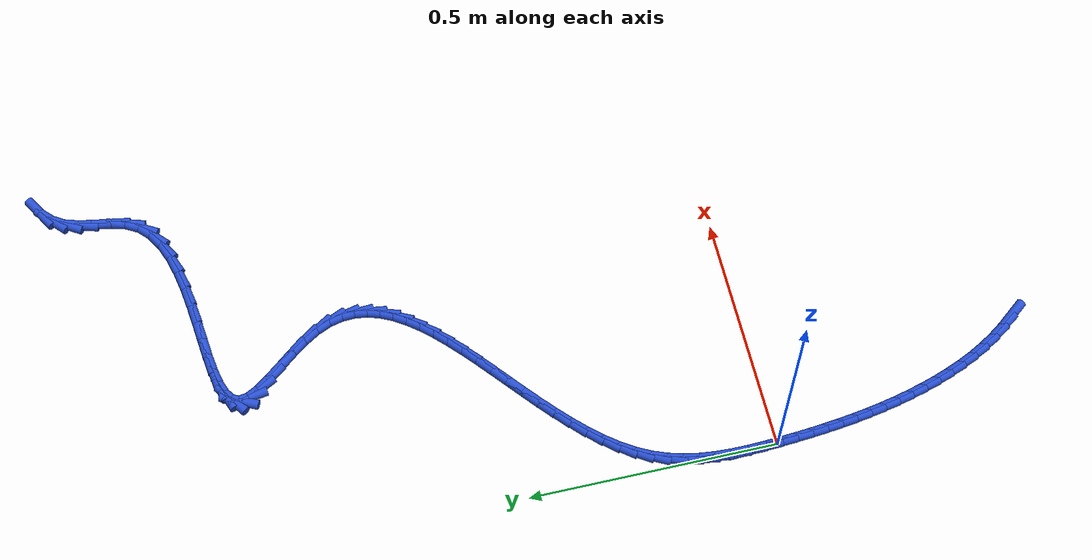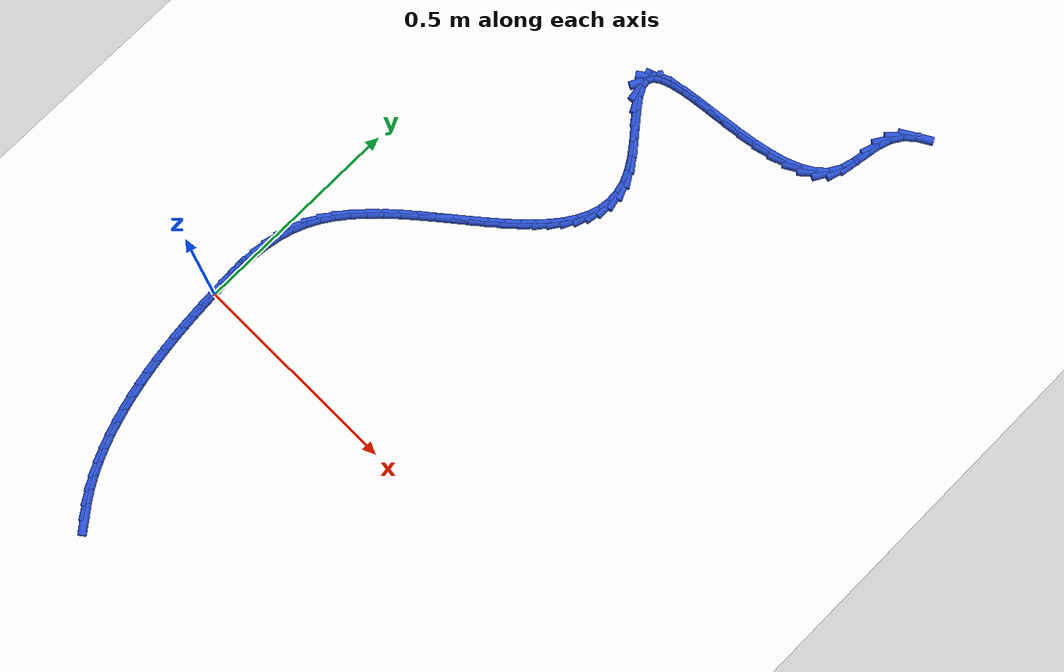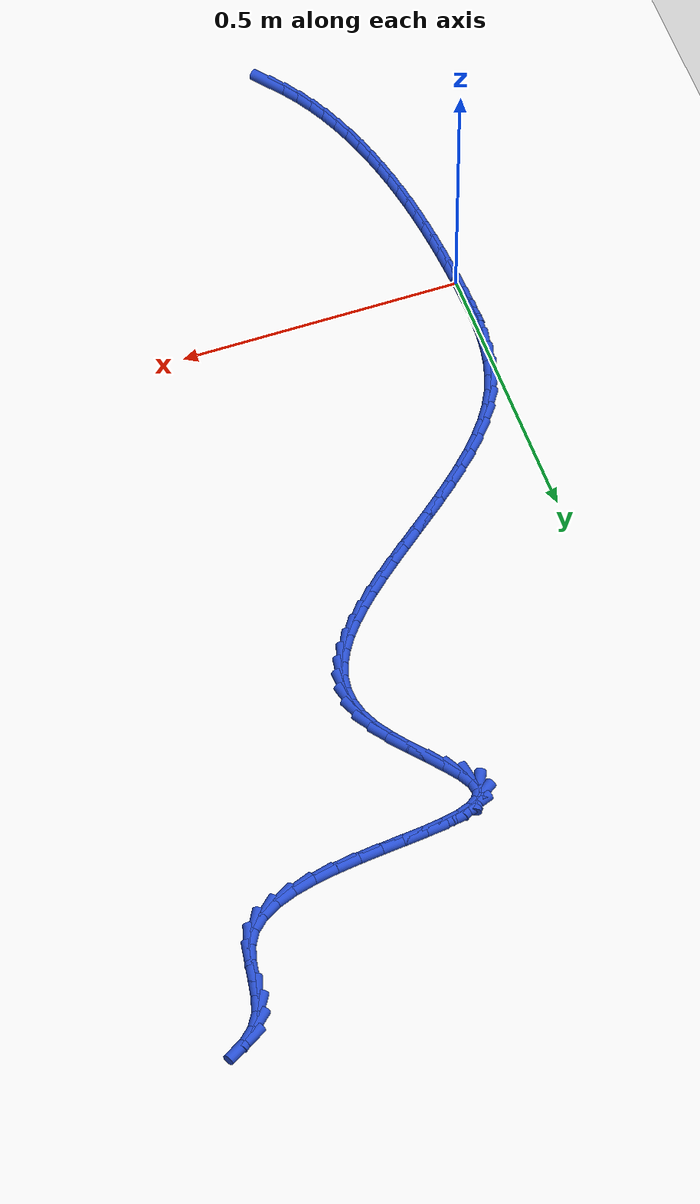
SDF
<sdf version="1.6">
 <world name="default">
  <model name="ground_plane">
   <static>1</static>
   <link name="link">
    <collision name="collision">
     <geometry><plane><normal>0 0 1</normal><size>100 100</size></plane></geometry>
     <surface><friction><ode><mu>100</mu><mu2>50</mu2></ode></friction></surface>
    </collision>
    <visual name="visual">
     <cast_shadows>0</cast_shadows>
     <geometry><plane><normal>0 0 1</normal><size>100 100</size></plane></geometry>
     <material>
      <script><uri>file://media/materials/scripts/gazebo.material</uri><name>Gazebo/WhiteGlow</name></script>
     </material>
    </visual>
   </link>
  </model>
  <model name="line">
   <link name="link_0">
    <pose>1.734723475976807e-18 -4.85722573273506e-17 0.01 0 1.57 -1.5189134260214208</pose>
    <collision name="collision">
     <geometry><cylinder><radius>0.01</radius><length>0.08</length></cylinder></geometry>
    </collision>
    <visual name="visual">
     <material>
      <script><name>Gazebo/Blue</name><uri>file://media/materials/scripts/gazebo.material</uri></script>
     </material>
     <geometry><cylinder><radius>0.01</radius><length>0.08</length></cylinder></geometry>
    </visual>
   </link>
   <link name="link_1">
    <pose>-0.0016460797843267311 0.03169835346029947 0.01 0 1.57 -1.5418262945650378</pose>
    <collision name="collision">
     <geometry><cylinder><radius>0.01</radius><length>0.08</length></cylinder></geometry>
    </collision>
    <visual name="visual">
     <material>
      <script><name>Gazebo/Blue</name><uri>file://media/materials/scripts/gazebo.material</uri></script>
     </material>
     <geometry><cylinder><radius>0.01</radius><length>0.08</length></cylinder></geometry>
    </visual>
   </link>
   <link name="link_2">
    <pose>-0.0025672938509750513 0.0634883194280632 0.01 0 1.57 1.5645765763036645</pose>
    <collision name="collision">
     <geometry><cylinder><radius>0.01</radius><length>0.08</length></cylinder></geometry>
    </collision>
    <visual name="visual">
     <material>
      <script><name>Gazebo/Blue</name><uri>file://media/materials/scripts/gazebo.material</uri></script>
     </material>
     <geometry><cylinder><radius>0.01</radius><length>0.08</length></cylinder></geometry>
    </visual>
   </link>
   <link name="link_3">
    <pose>-0.002369825666599471 0.09523648011001434 0.01 0 1.57 1.5166899265524179</pose>
    <collision name="collision">
     <geometry><cylinder><radius>0.01</radius><length>0.08</length></cylinder></geometry>
    </collision>
    <visual name="visual">
     <material>
      <script><name>Gazebo/Blue</name><uri>file://media/materials/scripts/gazebo.material</uri></script>
     </material>
     <geometry><cylinder><radius>0.01</radius><length>0.08</length></cylinder></geometry>
    </visual>
   </link>
   <link name="link_4">
    <pose>-0.0006598586978545061 0.12680941771287624 0.01 0 1.57 1.4556399550820853</pose>
    <collision name="collision">
     <geometry><cylinder><radius>0.01</radius><length>0.08</length></cylinder></geometry>
    </collision>
    <visual name="visual">
     <material>
      <script><name>Gazebo/Blue</name><uri>file://media/materials/scripts/gazebo.material</uri></script>
     </material>
     <geometry><cylinder><radius>0.01</radius><length>0.08</length></cylinder></geometry>
    </visual>
   </link>
   <link name="link_5">
    <pose>0.0029564235886053326 0.158073714443372 0.01 0 1.57 1.381150320873523</pose>
    <collision name="collision">
     <geometry><cylinder><radius>0.01</radius><length>0.08</length></cylinder></geometry>
    </collision>
    <visual name="visual">
     <material>
      <script><name>Gazebo/Blue</name><uri>file://media/materials/scripts/gazebo.material</uri></script>
     </material>
     <geometry><cylinder><radius>0.01</radius><length>0.08</length></cylinder></geometry>
    </visual>
   </link>
   <link name="link_6">
    <pose>0.00887283772612553 0.18889595250822502 0.01 0 1.57 1.293461888868063</pose>
    <collision name="collision">
     <geometry><cylinder><radius>0.01</radius><length>0.08</length></cylinder></geometry>
    </collision>
    <visual name="visual">
     <material>
      <script><name>Gazebo/Blue</name><uri>file://media/materials/scripts/gazebo.material</uri></script>
     </material>
     <geometry><cylinder><radius>0.01</radius><length>0.08</length></cylinder></geometry>
    </visual>
   </link>
   <link name="link_7">
    <pose>0.017483200248051577 0.21914271411415848 0.01 0 1.57 1.1937098474214811</pose>
    <collision name="collision">
     <geometry><cylinder><radius>0.01</radius><length>0.08</length></cylinder></geometry>
    </collision>
    <visual name="visual">
     <material>
      <script><name>Gazebo/Blue</name><uri>file://media/materials/scripts/gazebo.material</uri></script>
     </material>
     <geometry><cylinder><radius>0.01</radius><length>0.08</length></cylinder></geometry>
    </visual>
   </link>
   <link name="link_8">
    <pose>0.02918132768772895 0.24868058146789565 0.01 0 1.57 1.0854017996350127</pose>
    <collision name="collision">
     <geometry><cylinder><radius>0.01</radius><length>0.08</length></cylinder></geometry>
    </collision>
    <visual name="visual">
     <material>
      <script><name>Gazebo/Blue</name><uri>file://media/materials/scripts/gazebo.material</uri></script>
     </material>
     <geometry><cylinder><radius>0.01</radius><length>0.08</length></cylinder></geometry>
    </visual>
   </link>
   <link name="link_9">
    <pose>0.04432294769058389 0.277385789509328 0.01 0 1.57 0.9854817044311218</pose>
    <collision name="collision">
     <geometry><cylinder><radius>0.01</radius><length>0.08</length></cylinder></geometry>
    </collision>
    <visual name="visual">
     <material>
      <script><name>Gazebo/Blue</name><uri>file://media/materials/scripts/gazebo.material</uri></script>
     </material>
     <geometry><cylinder><radius>0.01</radius><length>0.08</length></cylinder></geometry>
    </visual>
   </link>
   <link name="link_10">
    <pose>0.06279357228858395 0.3052537382707447 0.01 0 1.57 0.9032248624812153</pose>
    <collision name="collision">
     <geometry><cylinder><radius>0.01</radius><length>0.08</length></cylinder></geometry>
    </collision>
    <visual name="visual">
     <material>
      <script><name>Gazebo/Blue</name><uri>file://media/materials/scripts/gazebo.material</uri></script>
     </material>
     <geometry><cylinder><radius>0.01</radius><length>0.08</length></cylinder></geometry>
    </visual>
   </link>
   <link name="link_11">
    <pose>0.08416179328791729 0.33236014376482087 0.01 0 1.57 0.8369656892477249</pose>
    <collision name="collision">
     <geometry><cylinder><radius>0.01</radius><length>0.08</length></cylinder></geometry>
    </collision>
    <visual name="visual">
     <material>
      <script><name>Gazebo/Blue</name><uri>file://media/materials/scripts/gazebo.material</uri></script>
     </material>
     <geometry><cylinder><radius>0.01</radius><length>0.08</length></cylinder></geometry>
    </visual>
   </link>
   <link name="link_12">
    <pose>0.10799027667927266 0.35878222376285346 0.01 0 1.57 0.7846928789961841</pose>
    <collision name="collision">
     <geometry><cylinder><radius>0.01</radius><length>0.08</length></cylinder></geometry>
    </collision>
    <visual name="visual">
     <material>
      <script><name>Gazebo/Blue</name><uri>file://media/materials/scripts/gazebo.material</uri></script>
     </material>
     <geometry><cylinder><radius>0.01</radius><length>0.08</length></cylinder></geometry>
    </visual>
   </link>
   <link name="link_13">
    <pose>0.13384168845333874 0.38459719603613923 0.01 0 1.57 0.7446044455101657</pose>
    <collision name="collision">
     <geometry><cylinder><radius>0.01</radius><length>0.08</length></cylinder></geometry>
    </collision>
    <visual name="visual">
     <material>
      <script><name>Gazebo/Blue</name><uri>file://media/materials/scripts/gazebo.material</uri></script>
     </material>
     <geometry><cylinder><radius>0.01</radius><length>0.08</length></cylinder></geometry>
    </visual>
   </link>
   <link name="link_14">
    <pose>0.16127869460080424 0.40988227835597485 0.01 0 1.57 0.7152584562376902</pose>
    <collision name="collision">
     <geometry><cylinder><radius>0.01</radius><length>0.08</length></cylinder></geometry>
    </collision>
    <visual name="visual">
     <material>
      <script><name>Gazebo/Blue</name><uri>file://media/materials/scripts/gazebo.material</uri></script>
     </material>
     <geometry><cylinder><radius>0.01</radius><length>0.08</length></cylinder></geometry>
    </visual>
   </link>
   <link name="link_15">
    <pose>0.1898639611123579 0.43471468849365724 0.01 0 1.57 0.6956131613511655</pose>
    <collision name="collision">
     <geometry><cylinder><radius>0.01</radius><length>0.08</length></cylinder></geometry>
    </collision>
    <visual name="visual">
     <material>
      <script><name>Gazebo/Blue</name><uri>file://media/materials/scripts/gazebo.material</uri></script>
     </material>
     <geometry><cylinder><radius>0.01</radius><length>0.08</length></cylinder></geometry>
    </visual>
   </link>
   <link name="link_16">
    <pose>0.2191601539786885 0.45917164422048323 0.01 0 1.57 0.6850253288112776</pose>
    <collision name="collision">
     <geometry><cylinder><radius>0.01</radius><length>0.08</length></cylinder></geometry>
    </collision>
    <visual name="visual">
     <material>
      <script><name>Gazebo/Blue</name><uri>file://media/materials/scripts/gazebo.material</uri></script>
     </material>
     <geometry><cylinder><radius>0.01</radius><length>0.08</length></cylinder></geometry>
    </visual>
   </link>
   <link name="link_17">
    <pose>0.24872993919048458 0.4833303633077494 0.01 0 1.57 0.6832435721577305</pose>
    <collision name="collision">
     <geometry><cylinder><radius>0.01</radius><length>0.08</length></cylinder></geometry>
    </collision>
    <visual name="visual">
     <material>
      <script><name>Gazebo/Blue</name><uri>file://media/materials/scripts/gazebo.material</uri></script>
     </material>
     <geometry><cylinder><radius>0.01</radius><length>0.08</length></cylinder></geometry>
    </visual>
   </link>
   <link name="link_18">
    <pose>0.27813598273843515 0.5072680635267528 0.01 0 1.57 0.6904153159585457</pose>
    <collision name="collision">
     <geometry><cylinder><radius>0.01</radius><length>0.08</length></cylinder></geometry>
    </collision>
    <visual name="visual">
     <material>
      <script><name>Gazebo/Blue</name><uri>file://media/materials/scripts/gazebo.material</uri></script>
     </material>
     <geometry><cylinder><radius>0.01</radius><length>0.08</length></cylinder></geometry>
    </visual>
   </link>
   <link name="link_19">
    <pose>0.3069409506132286 0.53106196264879 0.01 0 1.57 0.7071172337519179</pose>
    <collision name="collision">
     <geometry><cylinder><radius>0.01</radius><length>0.08</length></cylinder></geometry>
    </collision>
    <visual name="visual">
     <material>
      <script><name>Gazebo/Blue</name><uri>file://media/materials/scripts/gazebo.material</uri></script>
     </material>
     <geometry><cylinder><radius>0.01</radius><length>0.08</length></cylinder></geometry>
    </visual>
   </link>
   <link name="link_20">
    <pose>0.33470750880555394 0.554789278445158 0.01 0 1.57 0.7344144549488046</pose>
    <collision name="collision">
     <geometry><cylinder><radius>0.01</radius><length>0.08</length></cylinder></geometry>
    </collision>
    <visual name="visual">
     <material>
      <script><name>Gazebo/Blue</name><uri>file://media/materials/scripts/gazebo.material</uri></script>
     </material>
     <geometry><cylinder><radius>0.01</radius><length>0.08</length></cylinder></geometry>
    </visual>
   </link>
   <link name="link_21">
    <pose>0.3609983233060997 0.5785272286871536 0.01 0 1.57 0.7739485845781411</pose>
    <collision name="collision">
     <geometry><cylinder><radius>0.01</radius><length>0.08</length></cylinder></geometry>
    </collision>
    <visual name="visual">
     <material>
      <script><name>Gazebo/Blue</name><uri>file://media/materials/scripts/gazebo.material</uri></script>
     </material>
     <geometry><cylinder><radius>0.01</radius><length>0.08</length></cylinder></geometry>
    </visual>
   </link>
   <link name="link_22">
    <pose>0.38537606010555475 0.6023530311460733 0.01 0 1.57 0.8280412291195116</pose>
    <collision name="collision">
     <geometry><cylinder><radius>0.01</radius><length>0.08</length></cylinder></geometry>
    </collision>
    <visual name="visual">
     <material>
      <script><name>Gazebo/Blue</name><uri>file://media/materials/scripts/gazebo.material</uri></script>
     </material>
     <geometry><cylinder><radius>0.01</radius><length>0.08</length></cylinder></geometry>
    </visual>
   </link>
   <link name="link_23">
    <pose>0.40740338519460767 0.6263439035932142 0.01 0 1.57 0.8997638710351674</pose>
    <collision name="collision">
     <geometry><cylinder><radius>0.01</radius><length>0.08</length></cylinder></geometry>
    </collision>
    <visual name="visual">
     <material>
      <script><name>Gazebo/Blue</name><uri>file://media/materials/scripts/gazebo.material</uri></script>
     </material>
     <geometry><cylinder><radius>0.01</radius><length>0.08</length></cylinder></geometry>
    </visual>
   </link>
   <link name="link_24">
    <pose>0.42664296456394735 0.650577063799873 0.01 0 1.57 0.9928403407481277</pose>
    <collision name="collision">
     <geometry><cylinder><radius>0.01</radius><length>0.08</length></cylinder></geometry>
    </collision>
    <visual name="visual">
     <material>
      <script><name>Gazebo/Blue</name><uri>file://media/materials/scripts/gazebo.material</uri></script>
     </material>
     <geometry><cylinder><radius>0.01</radius><length>0.08</length></cylinder></geometry>
    </visual>
   </link>
   <link name="link_25">
    <pose>0.44265746420426233 0.6751297295373464 0.01 0 1.57 1.1110878754475098</pose>
    <collision name="collision">
     <geometry><cylinder><radius>0.01</radius><length>0.08</length></cylinder></geometry>
    </collision>
    <visual name="visual">
     <material>
      <script><name>Gazebo/Blue</name><uri>file://media/materials/scripts/gazebo.material</uri></script>
     </material>
     <geometry><cylinder><radius>0.01</radius><length>0.08</length></cylinder></geometry>
    </visual>
   </link>
   <link name="link_26">
    <pose>0.45500955010624133 0.7000791185769313 0.01 0 1.57 1.2569289182996217</pose>
    <collision name="collision">
     <geometry><cylinder><radius>0.01</radius><length>0.08</length></cylinder></geometry>
    </collision>
    <visual name="visual">
     <material>
      <script><name>Gazebo/Blue</name><uri>file://media/materials/scripts/gazebo.material</uri></script>
     </material>
     <geometry><cylinder><radius>0.01</radius><length>0.08</length></cylinder></geometry>
    </visual>
   </link>
   <link name="link_27">
    <pose>0.4632618882605733 0.7255024486899246 0.01 0 1.57 1.4287251512366161</pose>
    <collision name="collision">
     <geometry><cylinder><radius>0.01</radius><length>0.08</length></cylinder></geometry>
    </collision>
    <visual name="visual">
     <material>
      <script><name>Gazebo/Blue</name><uri>file://media/materials/scripts/gazebo.material</uri></script>
     </material>
     <geometry><cylinder><radius>0.01</radius><length>0.08</length></cylinder></geometry>
    </visual>
   </link>
   <link name="link_28">
    <pose>0.46697714465794665 0.7514769376476229 0.01 0 1.57 -1.5234999055666298</pose>
    <collision name="collision">
     <geometry><cylinder><radius>0.01</radius><length>0.08</length></cylinder></geometry>
    </collision>
    <visual name="visual">
     <material>
      <script><name>Gazebo/Blue</name><uri>file://media/materials/scripts/gazebo.material</uri></script>
     </material>
     <geometry><cylinder><radius>0.01</radius><length>0.08</length></cylinder></geometry>
    </visual>
   </link>
   <link name="link_29">
    <pose>0.46571798528905034 0.778079803221323 0.01 0 1.57 -1.3312084464958525</pose>
    <collision name="collision">
     <geometry><cylinder><radius>0.01</radius><length>0.08</length></cylinder></geometry>
    </collision>
    <visual name="visual">
     <material>
      <script><name>Gazebo/Blue</name><uri>file://media/materials/scripts/gazebo.material</uri></script>
     </material>
     <geometry><cylinder><radius>0.01</radius><length>0.08</length></cylinder></geometry>
    </visual>
   </link>
   <link name="link_30">
    <pose>0.4590470761445731 0.8053882631823218 0.01 0 1.57 -1.1515338383840577</pose>
    <collision name="collision">
     <geometry><cylinder><radius>0.01</radius><length>0.08</length></cylinder></geometry>
    </collision>
    <visual name="visual">
     <material>
      <script><name>Gazebo/Blue</name><uri>file://media/materials/scripts/gazebo.material</uri></script>
     </material>
     <geometry><cylinder><radius>0.01</radius><length>0.08</length></cylinder></geometry>
    </visual>
   </link>
   <link name="link_31">
    <pose>0.44652713254071225 0.8334795214001698 0.01 0 1.57 -1.0059503788455562</pose>
    <collision name="collision">
     <geometry><cylinder><radius>0.01</radius><length>0.08</length></cylinder></geometry>
    </collision>
    <visual name="visual">
     <material>
      <script><name>Gazebo/Blue</name><uri>file://media/materials/scripts/gazebo.material</uri></script>
     </material>
     <geometry><cylinder><radius>0.01</radius><length>0.08</length></cylinder></geometry>
    </visual>
   </link>
   <link name="link_32">
    <pose>0.42827997343888735 0.8622732057305147 0.01 0 1.57 -0.9216304899793426</pose>
    <collision name="collision">
     <geometry><cylinder><radius>0.01</radius><length>0.08</length></cylinder></geometry>
    </collision>
    <visual name="visual">
     <material>
      <script><name>Gazebo/Blue</name><uri>file://media/materials/scripts/gazebo.material</uri></script>
     </material>
     <geometry><cylinder><radius>0.01</radius><length>0.08</length></cylinder></geometry>
    </visual>
   </link>
   <link name="link_33">
    <pose>0.40637277105334624 0.8911406717831823 0.01 0 1.57 -0.8848567821568042</pose>
    <collision name="collision">
     <geometry><cylinder><radius>0.01</radius><length>0.08</length></cylinder></geometry>
    </collision>
    <visual name="visual">
     <material>
      <script><name>Gazebo/Blue</name><uri>file://media/materials/scripts/gazebo.material</uri></script>
     </material>
     <geometry><cylinder><radius>0.01</radius><length>0.08</length></cylinder></geometry>
    </visual>
   </link>
   <link name="link_34">
    <pose>0.38329552865643496 0.9193341057916969 0.01 0 1.57 -0.8883591014984118</pose>
    <collision name="collision">
     <geometry><cylinder><radius>0.01</radius><length>0.08</length></cylinder></geometry>
    </collision>
    <visual name="visual">
     <material>
      <script><name>Gazebo/Blue</name><uri>file://media/materials/scripts/gazebo.material</uri></script>
     </material>
     <geometry><cylinder><radius>0.01</radius><length>0.08</length></cylinder></geometry>
    </visual>
   </link>
   <link name="link_35">
    <pose>0.36153824952049896 0.946105693989582 0.01 0 1.57 -0.9405393700569313</pose>
    <collision name="collision">
     <geometry><cylinder><radius>0.01</radius><length>0.08</length></cylinder></geometry>
    </collision>
    <visual name="visual">
     <material>
      <script><name>Gazebo/Blue</name><uri>file://media/materials/scripts/gazebo.material</uri></script>
     </material>
     <geometry><cylinder><radius>0.01</radius><length>0.08</length></cylinder></geometry>
    </visual>
   </link>
   <link name="link_36">
    <pose>0.34359093691788434 0.9707076226103615 0.01 0 1.57 -1.0778888052492228</pose>
    <collision name="collision">
     <geometry><cylinder><radius>0.01</radius><length>0.08</length></cylinder></geometry>
    </collision>
    <visual name="visual">
     <material>
      <script><name>Gazebo/Blue</name><uri>file://media/materials/scripts/gazebo.material</uri></script>
     </material>
     <geometry><cylinder><radius>0.01</radius><length>0.08</length></cylinder></geometry>
    </visual>
   </link>
   <link name="link_37">
    <pose>0.33194359412093677 0.9923920778875597 0.01 0 1.57 -1.4119749061984015</pose>
    <collision name="collision">
     <geometry><cylinder><radius>0.01</radius><length>0.08</length></cylinder></geometry>
    </collision>
    <visual name="visual">
     <material>
      <script><name>Gazebo/Blue</name><uri>file://media/materials/scripts/gazebo.material</uri></script>
     </material>
     <geometry><cylinder><radius>0.01</radius><length>0.08</length></cylinder></geometry>
    </visual>
   </link>
   <link name="link_38">
    <pose>0.32905564551787486 1.0104225523310293 0.01 0 1.57 1.1199391585044085</pose>
    <collision name="collision">
     <geometry><cylinder><radius>0.01</radius><length>0.08</length></cylinder></geometry>
    </collision>
    <visual name="visual">
     <material>
      <script><name>Gazebo/Blue</name><uri>file://media/materials/scripts/gazebo.material</uri></script>
     </material>
     <geometry><cylinder><radius>0.01</radius><length>0.08</length></cylinder></geometry>
    </visual>
   </link>
   <link name="link_39">
    <pose>0.33592121875034453 1.024604319172656 0.01 0 1.57 0.6122443756255788</pose>
    <collision name="collision">
     <geometry><cylinder><radius>0.01</radius><length>0.08</length></cylinder></geometry>
    </collision>
    <visual name="visual">
     <material>
      <script><name>Gazebo/Blue</name><uri>file://media/materials/scripts/gazebo.material</uri></script>
     </material>
     <geometry><cylinder><radius>0.01</radius><length>0.08</length></cylinder></geometry>
    </visual>
   </link>
   <link name="link_40">
    <pose>0.35145346962300356 1.035512072873852 0.01 0 1.57 0.3456996774239005</pose>
    <collision name="collision">
     <geometry><cylinder><radius>0.01</radius><length>0.08</length></cylinder></geometry>
    </collision>
    <visual name="visual">
     <material>
      <script><name>Gazebo/Blue</name><uri>file://media/materials/scripts/gazebo.material</uri></script>
     </material>
     <geometry><cylinder><radius>0.01</radius><length>0.08</length></cylinder></geometry>
    </visual>
   </link>
   <link name="link_41">
    <pose>0.3744070707561347 1.0437791056744408 0.01 0 1.57 0.21166902380520375</pose>
    <collision name="collision">
     <geometry><cylinder><radius>0.01</radius><length>0.08</length></cylinder></geometry>
    </collision>
    <visual name="visual">
     <material>
      <script><name>Gazebo/Blue</name><uri>file://media/materials/scripts/gazebo.material</uri></script>
     </material>
     <geometry><cylinder><radius>0.01</radius><length>0.08</length></cylinder></geometry>
    </visual>
   </link>
   <link name="link_42">
    <pose>0.40353669477002047 1.0500387098142452 0.01 0 1.57 0.1424640506332432</pose>
    <collision name="collision">
     <geometry><cylinder><radius>0.01</radius><length>0.08</length></cylinder></geometry>
    </collision>
    <visual name="visual">
     <material>
      <script><name>Gazebo/Blue</name><uri>file://media/materials/scripts/gazebo.material</uri></script>
     </material>
     <geometry><cylinder><radius>0.01</radius><length>0.08</length></cylinder></geometry>
    </visual>
   </link>
   <link name="link_43">
    <pose>0.437597014284944 1.0549241775330884 0.01 0 1.57 0.10936576256194688</pose>
    <collision name="collision">
     <geometry><cylinder><radius>0.01</radius><length>0.08</length></cylinder></geometry>
    </collision>
    <visual name="visual">
     <material>
      <script><name>Gazebo/Blue</name><uri>file://media/materials/scripts/gazebo.material</uri></script>
     </material>
     <geometry><cylinder><radius>0.01</radius><length>0.08</length></cylinder></geometry>
    </visual>
   </link>
   <link name="link_44">
    <pose>0.47534270192118766 1.059068801070793 0.01 0 1.57 0.10012440549877785</pose>
    <collision name="collision">
     <geometry><cylinder><radius>0.01</radius><length>0.08</length></cylinder></geometry>
    </collision>
    <visual name="visual">
     <material>
      <script><name>Gazebo/Blue</name><uri>file://media/materials/scripts/gazebo.material</uri></script>
     </material>
     <geometry><cylinder><radius>0.01</radius><length>0.08</length></cylinder></geometry>
    </visual>
   </link>
   <link name="link_45">
    <pose>0.5155284302990344 1.063105872667182 0.01 0 1.57 0.10982129104937971</pose>
    <collision name="collision">
     <geometry><cylinder><radius>0.01</radius><length>0.08</length></cylinder></geometry>
    </collision>
    <visual name="visual">
     <material>
      <script><name>Gazebo/Blue</name><uri>file://media/materials/scripts/gazebo.material</uri></script>
     </material>
     <geometry><cylinder><radius>0.01</radius><length>0.08</length></cylinder></geometry>
    </visual>
   </link>
   <link name="link_46">
    <pose>0.5569088720387666 1.0676686845620786 0.01 0 1.57 0.13756899999003805</pose>
    <collision name="collision">
     <geometry><cylinder><radius>0.01</radius><length>0.08</length></cylinder></geometry>
    </collision>
    <visual name="visual">
     <material>
      <script><name>Gazebo/Blue</name><uri>file://media/materials/scripts/gazebo.material</uri></script>
     </material>
     <geometry><cylinder><radius>0.01</radius><length>0.08</length></cylinder></geometry>
    </visual>
   </link>
   <link name="link_47">
    <pose>0.5982386997606676 1.0733905289953056 0.01 0 1.57 0.18553653587266689</pose>
    <collision name="collision">
     <geometry><cylinder><radius>0.01</radius><length>0.08</length></cylinder></geometry>
    </collision>
    <visual name="visual">
     <material>
      <script><name>Gazebo/Blue</name><uri>file://media/materials/scripts/gazebo.material</uri></script>
     </material>
     <geometry><cylinder><radius>0.01</radius><length>0.08</length></cylinder></geometry>
    </visual>
   </link>
   <link name="link_48">
    <pose>0.6382725860850198 1.080904698206686 0.01 0 1.57 0.2591514601777915</pose>
    <collision name="collision">
     <geometry><cylinder><radius>0.01</radius><length>0.08</length></cylinder></geometry>
    </collision>
    <visual name="visual">
     <material>
      <script><name>Gazebo/Blue</name><uri>file://media/materials/scripts/gazebo.material</uri></script>
     </material>
     <geometry><cylinder><radius>0.01</radius><length>0.08</length></cylinder></geometry>
    </visual>
   </link>
   <link name="link_49">
    <pose>0.6757652036321055 1.090844484436043 0.01 0 1.57 0.3680739921741338</pose>
    <collision name="collision">
     <geometry><cylinder><radius>0.01</radius><length>0.08</length></cylinder></geometry>
    </collision>
    <visual name="visual">
     <material>
      <script><name>Gazebo/Blue</name><uri>file://media/materials/scripts/gazebo.material</uri></script>
     </material>
     <geometry><cylinder><radius>0.01</radius><length>0.08</length></cylinder></geometry>
    </visual>
   </link>
   <link name="link_50">
    <pose>0.7094712250222078 1.103843179923199 0.01 0 1.57 0.527146053106423</pose>
    <collision name="collision">
     <geometry><cylinder><radius>0.01</radius><length>0.08</length></cylinder></geometry>
    </collision>
    <visual name="visual">
     <material>
      <script><name>Gazebo/Blue</name><uri>file://media/materials/scripts/gazebo.material</uri></script>
     </material>
     <geometry><cylinder><radius>0.01</radius><length>0.08</length></cylinder></geometry>
    </visual>
   </link>
   <link name="link_51">
    <pose>0.7381453228756094 1.120534076907977 0.01 0 1.57 0.753610826074289</pose>
    <collision name="collision">
     <geometry><cylinder><radius>0.01</radius><length>0.08</length></cylinder></geometry>
    </collision>
    <visual name="visual">
     <material>
      <script><name>Gazebo/Blue</name><uri>file://media/materials/scripts/gazebo.material</uri></script>
     </material>
     <geometry><cylinder><radius>0.01</radius><length>0.08</length></cylinder></geometry>
    </visual>
   </link>
   <link name="link_52">
    <pose>0.7605421698125935 1.141550467630201 0.01 0 1.57 1.0469563369030594</pose>
    <collision name="collision">
     <geometry><cylinder><radius>0.01</radius><length>0.08</length></cylinder></geometry>
    </collision>
    <visual name="visual">
     <material>
      <script><name>Gazebo/Blue</name><uri>file://media/materials/scripts/gazebo.material</uri></script>
     </material>
     <geometry><cylinder><radius>0.01</radius><length>0.08</length></cylinder></geometry>
    </visual>
   </link>
   <link name="link_53">
    <pose>0.7755125520495563 1.1674654920246001 0.01 0 1.57 1.2920843228856336</pose>
    <collision name="collision">
     <geometry><cylinder><radius>0.01</radius><length>0.08</length></cylinder></geometry>
    </collision>
    <visual name="visual">
     <material>
      <script><name>Gazebo/Blue</name><uri>file://media/materials/scripts/gazebo.material</uri></script>
     </material>
     <geometry><cylinder><radius>0.01</radius><length>0.08</length></cylinder></geometry>
    </visual>
   </link>
   <link name="link_54">
    <pose>0.7841012767249345 1.19747917091251 0.01 0 1.57 1.4022214852029578</pose>
    <collision name="collision">
     <geometry><cylinder><radius>0.01</radius><length>0.08</length></cylinder></geometry>
    </collision>
    <visual name="visual">
     <material>
      <script><name>Gazebo/Blue</name><uri>file://media/materials/scripts/gazebo.material</uri></script>
     </material>
     <geometry><cylinder><radius>0.01</radius><length>0.08</length></cylinder></geometry>
    </visual>
   </link>
   <link name="link_55">
    <pose>0.7895379936345978 1.229424150181623 0.01 0 1.57 1.395408541677641</pose>
    <collision name="collision">
     <geometry><cylinder><radius>0.01</radius><length>0.08</length></cylinder></geometry>
    </collision>
    <visual name="visual">
     <material>
      <script><name>Gazebo/Blue</name><uri>file://media/materials/scripts/gazebo.material</uri></script>
     </material>
     <geometry><cylinder><radius>0.01</radius><length>0.08</length></cylinder></geometry>
    </visual>
   </link>
   <link name="link_56">
    <pose>0.7951466305074962 1.2610740722568186 0.01 0 1.57 1.2678543479114326</pose>
    <collision name="collision">
     <geometry><cylinder><radius>0.01</radius><length>0.08</length></cylinder></geometry>
    </collision>
    <visual name="visual">
     <material>
      <script><name>Gazebo/Blue</name><uri>file://media/materials/scripts/gazebo.material</uri></script>
     </material>
     <geometry><cylinder><radius>0.01</radius><length>0.08</length></cylinder></geometry>
    </visual>
   </link>
   <link name="link_57">
    <pose>0.8042511150725808 1.2902025795629755 0.01 0 1.57 1.0161365986097153</pose>
    <collision name="collision">
     <geometry><cylinder><radius>0.01</radius><length>0.08</length></cylinder></geometry>
    </collision>
    <visual name="visual">
     <material>
      <script><name>Gazebo/Blue</name><uri>file://media/materials/scripts/gazebo.material</uri></script>
     </material>
     <geometry><cylinder><radius>0.01</radius><length>0.08</length></cylinder></geometry>
    </visual>
   </link>
   <link name="link_58">
    <pose>0.8195670444298113 1.3149242350780586 0.01 0 1.57 0.7529976357269617</pose>
    <collision name="collision">
     <geometry><cylinder><radius>0.01</radius><length>0.08</length></cylinder></geometry>
    </collision>
    <visual name="visual">
     <material>
      <script><name>Gazebo/Blue</name><uri>file://media/materials/scripts/gazebo.material</uri></script>
     </material>
     <geometry><cylinder><radius>0.01</radius><length>0.08</length></cylinder></geometry>
    </visual>
   </link>
   <link name="link_59">
    <pose>0.8409445430025707 1.3349594695157612 0.01 0 1.57 0.5313029907111606</pose>
    <collision name="collision">
     <geometry><cylinder><radius>0.01</radius><length>0.08</length></cylinder></geometry>
    </collision>
    <visual name="visual">
     <material>
      <script><name>Gazebo/Blue</name><uri>file://media/materials/scripts/gazebo.material</uri></script>
     </material>
     <geometry><cylinder><radius>0.01</radius><length>0.08</length></cylinder></geometry>
    </visual>
   </link>
   <link name="link_222">
    <pose>0.15846255328352138 -0.5317053500615745 0.01 0 1.57 -0.9037492773644477</pose>
    <collision name="collision">
     <geometry><cylinder><radius>0.01</radius><length>0.08</length></cylinder></geometry>
    </collision>
    <visual name="visual">
     <material>
      <script><name>Gazebo/Blue</name><uri>file://media/materials/scripts/gazebo.material</uri></script>
     </material>
     <geometry><cylinder><radius>0.01</radius><length>0.08</length></cylinder></geometry>
    </visual>
   </link>
   <link name="link_223">
    <pose>0.13940763944493476 -0.5075073730124922 0.01 0 1.57 -0.9679204817606178</pose>
    <collision name="collision">
     <geometry><cylinder><radius>0.01</radius><length>0.08</length></cylinder></geometry>
    </collision>
    <visual name="visual">
     <material>
      <script><name>Gazebo/Blue</name><uri>file://media/materials/scripts/gazebo.material</uri></script>
     </material>
     <geometry><cylinder><radius>0.01</radius><length>0.08</length></cylinder></geometry>
    </visual>
   </link>
   <link name="link_224">
    <pose>0.12189801284901147 -0.4820709032137101 0.01 0 1.57 -1.0323579061684152</pose>
    <collision name="collision">
     <geometry><cylinder><radius>0.01</radius><length>0.08</length></cylinder></geometry>
    </collision>
    <visual name="visual">
     <material>
      <script><name>Gazebo/Blue</name><uri>file://media/materials/scripts/gazebo.material</uri></script>
     </material>
     <geometry><cylinder><radius>0.01</radius><length>0.08</length></cylinder></geometry>
    </visual>
   </link>
   <link name="link_225">
    <pose>0.10597427323857195 -0.4554117677257458 0.01 0 1.57 -1.0910563617933788</pose>
    <collision name="collision">
     <geometry><cylinder><radius>0.01</radius><length>0.08</length></cylinder></geometry>
    </collision>
    <visual name="visual">
     <material>
      <script><name>Gazebo/Blue</name><uri>file://media/materials/scripts/gazebo.material</uri></script>
     </material>
     <geometry><cylinder><radius>0.01</radius><length>0.08</length></cylinder></geometry>
    </visual>
   </link>
   <link name="link_226">
    <pose>0.09155098431971957 -0.4276896209617216 0.01 0 1.57 -1.1441929661939163</pose>
    <collision name="collision">
     <geometry><cylinder><radius>0.01</radius><length>0.08</length></cylinder></geometry>
    </collision>
    <visual name="visual">
     <material>
      <script><name>Gazebo/Blue</name><uri>file://media/materials/scripts/gazebo.material</uri></script>
     </material>
     <geometry><cylinder><radius>0.01</radius><length>0.08</length></cylinder></geometry>
    </visual>
   </link>
   <link name="link_227">
    <pose>0.07854107382659904 -0.39906598424141454 0.01 0 1.57 -1.1921067271862227</pose>
    <collision name="collision">
     <geometry><cylinder><radius>0.01</radius><length>0.08</length></cylinder></geometry>
    </collision>
    <visual name="visual">
     <material>
      <script><name>Gazebo/Blue</name><uri>file://media/materials/scripts/gazebo.material</uri></script>
     </material>
     <geometry><cylinder><radius>0.01</radius><length>0.08</length></cylinder></geometry>
    </visual>
   </link>
   <link name="link_228">
    <pose>0.06685746949335504 -0.369702378884602 0.01 0 1.57 -1.2351736064291559</pose>
    <collision name="collision">
     <geometry><cylinder><radius>0.01</radius><length>0.08</length></cylinder></geometry>
    </collision>
    <visual name="visual">
     <material>
      <script><name>Gazebo/Blue</name><uri>file://media/materials/scripts/gazebo.material</uri></script>
     </material>
     <geometry><cylinder><radius>0.01</radius><length>0.08</length></cylinder></geometry>
    </visual>
   </link>
   <link name="link_229">
    <pose>0.05641309905413231 -0.3397603262110616 0.01 0 1.57 -1.2737729561346887</pose>
    <collision name="collision">
     <geometry><cylinder><radius>0.01</radius><length>0.08</length></cylinder></geometry>
    </collision>
    <visual name="visual">
     <material>
      <script><name>Gazebo/Blue</name><uri>file://media/materials/scripts/gazebo.material</uri></script>
     </material>
     <geometry><cylinder><radius>0.01</radius><length>0.08</length></cylinder></geometry>
    </visual>
   </link>
   <link name="link_230">
    <pose>0.04712089024307529 -0.30940134754056975 0.01 0 1.57 -1.3082650376082086</pose>
    <collision name="collision">
     <geometry><cylinder><radius>0.01</radius><length>0.08</length></cylinder></geometry>
    </collision>
    <visual name="visual">
     <material>
      <script><name>Gazebo/Blue</name><uri>file://media/materials/scripts/gazebo.material</uri></script>
     </material>
     <geometry><cylinder><radius>0.01</radius><length>0.08</length></cylinder></geometry>
    </visual>
   </link>
   <link name="link_231">
    <pose>0.038893770794329166 -0.2787869641929053 0.01 0 1.57 -1.3389901724192237</pose>
    <collision name="collision">
     <geometry><cylinder><radius>0.01</radius><length>0.08</length></cylinder></geometry>
    </collision>
    <visual name="visual">
     <material>
      <script><name>Gazebo/Blue</name><uri>file://media/materials/scripts/gazebo.material</uri></script>
     </material>
     <geometry><cylinder><radius>0.01</radius><length>0.08</length></cylinder></geometry>
    </visual>
   </link>
   <link name="link_232">
    <pose>0.031644785152170084 -0.2480773442292066 0.01 0 1.57 -1.3668935078953175</pose>
    <collision name="collision">
     <geometry><cylinder><radius>0.01</radius><length>0.08</length></cylinder></geometry>
    </collision>
    <visual name="visual">
     <material>
      <script><name>Gazebo/Blue</name><uri>file://media/materials/scripts/gazebo.material</uri></script>
     </material>
     <geometry><cylinder><radius>0.01</radius><length>0.08</length></cylinder></geometry>
    </visual>
   </link>
   <link name="link_233">
    <pose>0.02529321956865436 -0.21736028170010804 0.01 0 1.57 -1.3929661084555214</pose>
    <collision name="collision">
     <geometry><cylinder><radius>0.01</radius><length>0.08</length></cylinder></geometry>
    </collision>
    <visual name="visual">
     <material>
      <script><name>Gazebo/Blue</name><uri>file://media/materials/scripts/gazebo.material</uri></script>
     </material>
     <geometry><cylinder><radius>0.01</radius><length>0.08</length></cylinder></geometry>
    </visual>
   </link>
   <link name="link_234">
    <pose>0.019767621287203246 -0.18661618909148492 0.01 0 1.57 -1.4171333708253677</pose>
    <collision name="collision">
     <geometry><cylinder><radius>0.01</radius><length>0.08</length></cylinder></geometry>
    </collision>
    <visual name="visual">
     <material>
      <script><name>Gazebo/Blue</name><uri>file://media/materials/scripts/gazebo.material</uri></script>
     </material>
     <geometry><cylinder><radius>0.01</radius><length>0.08</length></cylinder></geometry>
    </visual>
   </link>
   <link name="link_235">
    <pose>0.01499728771956937 -0.1558167806574493 0.01 0 1.57 -1.4392618314881294</pose>
    <collision name="collision">
     <geometry><cylinder><radius>0.01</radius><length>0.08</length></cylinder></geometry>
    </collision>
    <visual name="visual">
     <material>
      <script><name>Gazebo/Blue</name><uri>file://media/materials/scripts/gazebo.material</uri></script>
     </material>
     <geometry><cylinder><radius>0.01</radius><length>0.08</length></cylinder></geometry>
    </visual>
   </link>
   <link name="link_236">
    <pose>0.010911516277505346 -0.12493377065211306 0.01 0 1.57 -1.4592457396988885</pose>
    <collision name="collision">
     <geometry><cylinder><radius>0.01</radius><length>0.08</length></cylinder></geometry>
    </collision>
    <visual name="visual">
     <material>
      <script><name>Gazebo/Blue</name><uri>file://media/materials/scripts/gazebo.material</uri></script>
     </material>
     <geometry><cylinder><radius>0.01</radius><length>0.08</length></cylinder></geometry>
    </visual>
   </link>
   <link name="link_237">
    <pose>0.007439604372763782 -0.09393887332958817 0.01 0 1.57 -1.4770061989589853</pose>
    <collision name="collision">
     <geometry><cylinder><radius>0.01</radius><length>0.08</length></cylinder></geometry>
    </collision>
    <visual name="visual">
     <material>
      <script><name>Gazebo/Blue</name><uri>file://media/materials/scripts/gazebo.material</uri></script>
     </material>
     <geometry><cylinder><radius>0.01</radius><length>0.08</length></cylinder></geometry>
    </visual>
   </link>
   <link name="link_238">
    <pose>0.004510849417097231 -0.06280380294398569 0.01 0 1.57 -1.4924895681614458</pose>
    <collision name="collision">
     <geometry><cylinder><radius>0.01</radius><length>0.08</length></cylinder></geometry>
    </collision>
    <visual name="visual">
     <material>
      <script><name>Gazebo/Blue</name><uri>file://media/materials/scripts/gazebo.material</uri></script>
     </material>
     <geometry><cylinder><radius>0.01</radius><length>0.08</length></cylinder></geometry>
    </visual>
   </link>
   <link name="link_239">
    <pose>0.002054548822258458 -0.03150027374941926 0.01 0 1.57 -1.5056653740754136</pose>
    <collision name="collision">
     <geometry><cylinder><radius>0.01</radius><length>0.08</length></cylinder></geometry>
    </collision>
    <visual name="visual">
     <material>
      <script><name>Gazebo/Blue</name><uri>file://media/materials/scripts/gazebo.material</uri></script>
     </material>
     <geometry><cylinder><radius>0.01</radius><length>0.08</length></cylinder></geometry>
    </visual>
   </link>
   <link name="link_240">
    <pose>-4.9873299934333204e-18 2.7755575615628914e-17 0.01 0 1.57 -1.5165239667975403</pose>
    <collision name="collision">
     <geometry><cylinder><radius>0.01</radius><length>0.08</length></cylinder></geometry>
    </collision>
    <visual name="visual">
     <material>
      <script><name>Gazebo/Blue</name><uri>file://media/materials/scripts/gazebo.material</uri></script>
     </material>
     <geometry><cylinder><radius>0.01</radius><length>0.08</length></cylinder></geometry>
    </visual>
   </link>
   <link name="link_241">
    <pose>-0.0017234996379255439 0.03172530405016023 0.01 0 1.57 -1.5250741126624165</pose>
    <collision name="collision">
     <geometry><cylinder><radius>0.01</radius><length>0.08</length></cylinder></geometry>
    </collision>
    <visual name="visual">
     <material>
      <script><name>Gazebo/Blue</name><uri>file://media/materials/scripts/gazebo.material</uri></script>
     </material>
     <geometry><cylinder><radius>0.01</radius><length>0.08</length></cylinder></geometry>
    </visual>
   </link>
   <link name="link_242">
    <pose>-0.003186652679765543 0.06370392414694945 0.01 0 1.57 -1.5208151249636004</pose>
    <collision name="collision">
     <geometry><cylinder><radius>0.01</radius><length>0.08</length></cylinder></geometry>
    </collision>
    <visual name="visual">
     <material>
      <script><name>Gazebo/Blue</name><uri>file://media/materials/scripts/gazebo.material</uri></script>
     </material>
     <geometry><cylinder><radius>0.01</radius><length>0.08</length></cylinder></geometry>
    </visual>
   </link>
  </model>
 </world>
</sdf>
